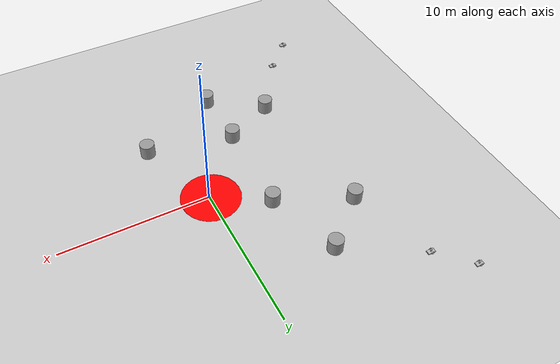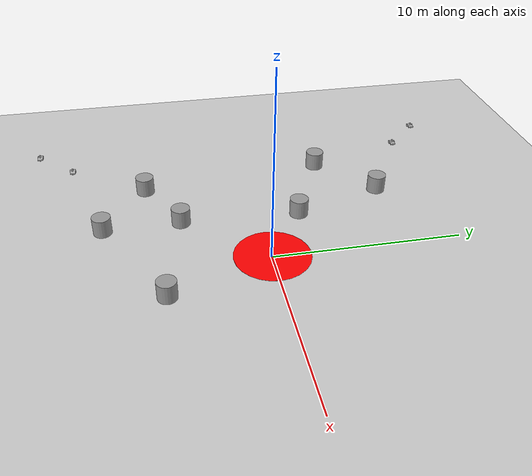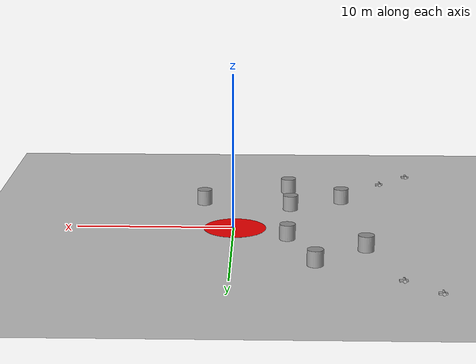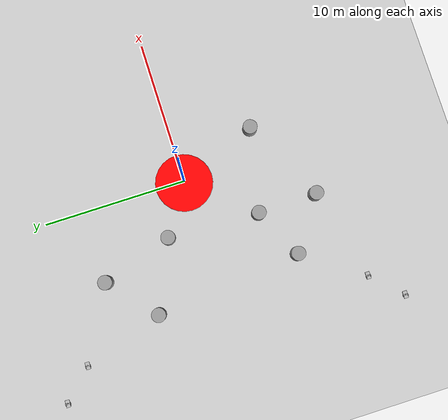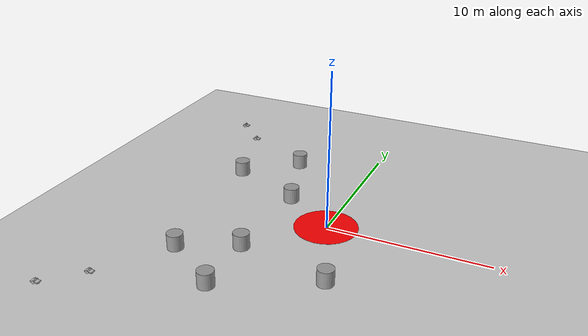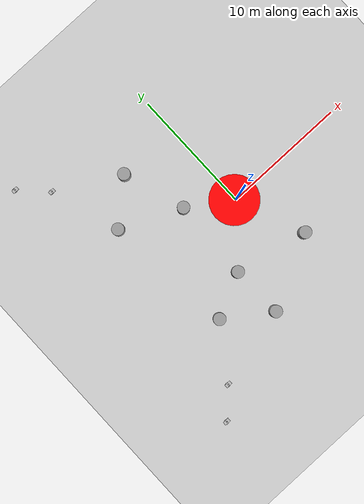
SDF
<sdf version="1.6">
 <world name="default">
  <model name="ground_plane">
   <static>1</static>
   <link name="link">
    <collision name="collision">
     <geometry><plane><normal>0 0 1</normal><size>100 100</size></plane></geometry>
     <surface>
      <contact><collide_bitmask>65535</collide_bitmask></contact>
      <friction><ode><mu>100</mu><mu2>50</mu2></ode></friction>
     </surface>
    </collision>
    <visual name="visual">
     <cast_shadows>0</cast_shadows>
     <geometry><plane><normal>0 0 1</normal><size>100 100</size></plane></geometry>
     <material>
      <script><uri>file://media/materials/scripts/gazebo.material</uri><name>Gazebo/Grey</name></script>
     </material>
    </visual>
   </link>
  </model>
  <model name="unit_cylinder_11_clone">
   <link name="link">
    <inertial>
     <mass>100</mass>
     <inertia><ixx>14.5833</ixx><ixy>0</ixy><ixz>0</ixz><iyy>14.5833</iyy><iyz>0</iyz><izz>12.5</izz></inertia>
    </inertial>
    <visual name="visual">
     <geometry><cylinder><radius>0.5</radius><length>1</length></cylinder></geometry>
     <material>
      <script><name>Gazebo/Grey</name><uri>file://media/materials/scripts/gazebo.material</uri></script>
      <shader type="vertex"><normal_map>__default__</normal_map></shader>
     </material>
    </visual>
    <collision name="collision">
     <geometry><cylinder><radius>0.5</radius><length>1</length></cylinder></geometry>
     <surface>
      <friction>
       <ode><mu>1</mu><mu2>1</mu2><fdir1>0 0 0</fdir1><slip1>0</slip1><slip2>0</slip2></ode>
       <torsional>
        <coefficient>1</coefficient>
        <patch_radius>0</patch_radius>
        <surface_radius>0</surface_radius>
        <use_patch_radius>1</use_patch_radius>
        <ode><slip>0</slip></ode>
       </torsional>
      </friction>
      <bounce><restitution_coefficient>0</restitution_coefficient><threshold>1e+06</threshold></bounce>
      <contact>
       <collide_without_contact>0</collide_without_contact>
       <collide_without_contact_bitmask>1</collide_without_contact_bitmask>
       <collide_bitmask>1</collide_bitmask>
       <ode>
        <soft_cfm>0</soft_cfm>
        <soft_erp>0.2</soft_erp>
        <kp>1e+13</kp>
        <kd>1</kd>
        <max_vel>0.01</max_vel>
        <min_depth>0</min_depth>
       </ode>
       <bullet>
        <split_impulse>1</split_impulse>
        <split_impulse_penetration_threshold>-0.01</split_impulse_penetration_threshold>
        <soft_cfm>0</soft_cfm>
        <soft_erp>0.2</soft_erp>
        <kp>1e+13</kp>
        <kd>1</kd>
       </bullet>
      </contact>
     </surface>
    </collision>
   </link>
   <static>0</static>
   <pose>2.1015 -5.40557 0.5 0 -0 0</pose>
  </model>
  <model name="unit_cylinder_11_clone_1">
   <link name="link">
    <inertial>
     <mass>100</mass>
     <inertia><ixx>14.5833</ixx><ixy>0</ixy><ixz>0</ixz><iyy>14.5833</iyy><iyz>0</iyz><izz>12.5</izz></inertia>
    </inertial>
    <visual name="visual">
     <geometry><cylinder><radius>0.5</radius><length>1</length></cylinder></geometry>
     <material>
      <script><name>Gazebo/Grey</name><uri>file://media/materials/scripts/gazebo.material</uri></script>
      <shader type="vertex"><normal_map>__default__</normal_map></shader>
     </material>
    </visual>
    <collision name="collision">
     <geometry><cylinder><radius>0.5</radius><length>1</length></cylinder></geometry>
     <surface>
      <friction>
       <ode><mu>1</mu><mu2>1</mu2><fdir1>0 0 0</fdir1><slip1>0</slip1><slip2>0</slip2></ode>
       <torsional>
        <coefficient>1</coefficient>
        <patch_radius>0</patch_radius>
        <surface_radius>0</surface_radius>
        <use_patch_radius>1</use_patch_radius>
        <ode><slip>0</slip></ode>
       </torsional>
      </friction>
      <bounce><restitution_coefficient>0</restitution_coefficient><threshold>1e+06</threshold></bounce>
      <contact>
       <collide_without_contact>0</collide_without_contact>
       <collide_without_contact_bitmask>1</collide_without_contact_bitmask>
       <collide_bitmask>1</collide_bitmask>
       <ode>
        <soft_cfm>0</soft_cfm>
        <soft_erp>0.2</soft_erp>
        <kp>1e+13</kp>
        <kd>1</kd>
        <max_vel>0.01</max_vel>
        <min_depth>0</min_depth>
       </ode>
       <bullet>
        <split_impulse>1</split_impulse>
        <split_impulse_penetration_threshold>-0.01</split_impulse_penetration_threshold>
        <soft_cfm>0</soft_cfm>
        <soft_erp>0.2</soft_erp>
        <kp>1e+13</kp>
        <kd>1</kd>
       </bullet>
      </contact>
     </surface>
    </collision>
   </link>
   <static>0</static>
   <pose>-3.59494 -8.3056 0.5 0 -0 0</pose>
  </model>
  <model name="unit_cylinder_11_clone_2">
   <link name="link">
    <inertial>
     <mass>100</mass>
     <inertia><ixx>14.5833</ixx><ixy>0</ixy><ixz>0</ixz><iyy>14.5833</iyy><iyz>0</iyz><izz>12.5</izz></inertia>
    </inertial>
    <visual name="visual">
     <geometry><cylinder><radius>0.5</radius><length>1</length></cylinder></geometry>
     <material>
      <script><name>Gazebo/Grey</name><uri>file://media/materials/scripts/gazebo.material</uri></script>
      <shader type="vertex"><normal_map>__default__</normal_map></shader>
     </material>
    </visual>
    <collision name="collision">
     <geometry><cylinder><radius>0.5</radius><length>1</length></cylinder></geometry>
     <surface>
      <friction>
       <ode><mu>1</mu><mu2>1</mu2><fdir1>0 0 0</fdir1><slip1>0</slip1><slip2>0</slip2></ode>
       <torsional>
        <coefficient>1</coefficient>
        <patch_radius>0</patch_radius>
        <surface_radius>0</surface_radius>
        <use_patch_radius>1</use_patch_radius>
        <ode><slip>0</slip></ode>
       </torsional>
      </friction>
      <bounce><restitution_coefficient>0</restitution_coefficient><threshold>1e+06</threshold></bounce>
      <contact>
       <collide_without_contact>0</collide_without_contact>
       <collide_without_contact_bitmask>1</collide_without_contact_bitmask>
       <collide_bitmask>1</collide_bitmask>
       <ode>
        <soft_cfm>0</soft_cfm>
        <soft_erp>0.2</soft_erp>
        <kp>1e+13</kp>
        <kd>1</kd>
        <max_vel>0.01</max_vel>
        <min_depth>0</min_depth>
       </ode>
       <bullet>
        <split_impulse>1</split_impulse>
        <split_impulse_penetration_threshold>-0.01</split_impulse_penetration_threshold>
        <soft_cfm>0</soft_cfm>
        <soft_erp>0.2</soft_erp>
        <kp>1e+13</kp>
        <kd>1</kd>
       </bullet>
      </contact>
     </surface>
    </collision>
   </link>
   <static>0</static>
   <pose>-7.13423 -5.85046 0.5 0 -0 0</pose>
  </model>
  <model name="unit_cylinder_11_clone_3">
   <link name="link">
    <inertial>
     <mass>100</mass>
     <inertia><ixx>14.5833</ixx><ixy>0</ixy><ixz>0</ixz><iyy>14.5833</iyy><iyz>0</iyz><izz>12.5</izz></inertia>
    </inertial>
    <visual name="visual">
     <geometry><cylinder><radius>0.5</radius><length>1</length></cylinder></geometry>
     <material>
      <script><name>Gazebo/Grey</name><uri>file://media/materials/scripts/gazebo.material</uri></script>
      <shader type="vertex"><normal_map>__default__</normal_map></shader>
     </material>
    </visual>
    <collision name="collision">
     <geometry><cylinder><radius>0.5</radius><length>1</length></cylinder></geometry>
     <surface>
      <friction>
       <ode><mu>1</mu><mu2>1</mu2><fdir1>0 0 0</fdir1><slip1>0</slip1><slip2>0</slip2></ode>
       <torsional>
        <coefficient>1</coefficient>
        <patch_radius>0</patch_radius>
        <surface_radius>0</surface_radius>
        <use_patch_radius>1</use_patch_radius>
        <ode><slip>0</slip></ode>
       </torsional>
      </friction>
      <bounce><restitution_coefficient>0</restitution_coefficient><threshold>1e+06</threshold></bounce>
      <contact>
       <collide_without_contact>0</collide_without_contact>
       <collide_without_contact_bitmask>1</collide_without_contact_bitmask>
       <collide_bitmask>1</collide_bitmask>
       <ode>
        <soft_cfm>0</soft_cfm>
        <soft_erp>0.2</soft_erp>
        <kp>1e+13</kp>
        <kd>1</kd>
        <max_vel>0.01</max_vel>
        <min_depth>0</min_depth>
       </ode>
       <bullet>
        <split_impulse>1</split_impulse>
        <split_impulse_penetration_threshold>-0.01</split_impulse_penetration_threshold>
        <soft_cfm>0</soft_cfm>
        <soft_erp>0.2</soft_erp>
        <kp>1e+13</kp>
        <kd>1</kd>
       </bullet>
      </contact>
     </surface>
    </collision>
   </link>
   <static>0</static>
   <pose>-3.68844 -4.16699 0.5 0 -0 0</pose>
  </model>
  <model name="unit_cylinder_11_clone_4">
   <link name="link">
    <inertial>
     <mass>100</mass>
     <inertia><ixx>14.5833</ixx><ixy>0</ixy><ixz>0</ixz><iyy>14.5833</iyy><iyz>0</iyz><izz>12.5</izz></inertia>
    </inertial>
    <visual name="visual">
     <geometry><cylinder><radius>0.5</radius><length>1</length></cylinder></geometry>
     <material>
      <script><name>Gazebo/Grey</name><uri>file://media/materials/scripts/gazebo.material</uri></script>
      <shader type="vertex"><normal_map>__default__</normal_map></shader>
     </material>
    </visual>
    <collision name="collision">
     <geometry><cylinder><radius>0.5</radius><length>1</length></cylinder></geometry>
     <surface>
      <friction>
       <ode><mu>1</mu><mu2>1</mu2><fdir1>0 0 0</fdir1><slip1>0</slip1><slip2>0</slip2></ode>
       <torsional>
        <coefficient>1</coefficient>
        <patch_radius>0</patch_radius>
        <surface_radius>0</surface_radius>
        <use_patch_radius>1</use_patch_radius>
        <ode><slip>0</slip></ode>
       </torsional>
      </friction>
      <bounce><restitution_coefficient>0</restitution_coefficient><threshold>1e+06</threshold></bounce>
      <contact>
       <collide_without_contact>0</collide_without_contact>
       <collide_without_contact_bitmask>1</collide_without_contact_bitmask>
       <collide_bitmask>1</collide_bitmask>
       <ode>
        <soft_cfm>0</soft_cfm>
        <soft_erp>0.2</soft_erp>
        <kp>1e+13</kp>
        <kd>1</kd>
        <max_vel>0.01</max_vel>
        <min_depth>0</min_depth>
       </ode>
       <bullet>
        <split_impulse>1</split_impulse>
        <split_impulse_penetration_threshold>-0.01</split_impulse_penetration_threshold>
        <soft_cfm>0</soft_cfm>
        <soft_erp>0.2</soft_erp>
        <kp>1e+13</kp>
        <kd>1</kd>
       </bullet>
      </contact>
     </surface>
    </collision>
   </link>
   <static>0</static>
   <pose>-8.20919 4.36885 0.5 0 -0 0</pose>
  </model>
  <model name="unit_cylinder_11_clone_5">
   <link name="link">
    <inertial>
     <mass>100</mass>
     <inertia><ixx>14.5833</ixx><ixy>0</ixy><ixz>0</ixz><iyy>14.5833</iyy><iyz>0</iyz><izz>12.5</izz></inertia>
    </inertial>
    <visual name="visual">
     <geometry><cylinder><radius>0.5</radius><length>1</length></cylinder></geometry>
     <material>
      <script><name>Gazebo/Grey</name><uri>file://media/materials/scripts/gazebo.material</uri></script>
      <shader type="vertex"><normal_map>__default__</normal_map></shader>
     </material>
    </visual>
    <collision name="collision">
     <geometry><cylinder><radius>0.5</radius><length>1</length></cylinder></geometry>
     <surface>
      <friction>
       <ode><mu>1</mu><mu2>1</mu2><fdir1>0 0 0</fdir1><slip1>0</slip1><slip2>0</slip2></ode>
       <torsional>
        <coefficient>1</coefficient>
        <patch_radius>0</patch_radius>
        <surface_radius>0</surface_radius>
        <use_patch_radius>1</use_patch_radius>
        <ode><slip>0</slip></ode>
       </torsional>
      </friction>
      <bounce><restitution_coefficient>0</restitution_coefficient><threshold>1e+06</threshold></bounce>
      <contact>
       <collide_without_contact>0</collide_without_contact>
       <collide_without_contact_bitmask>1</collide_without_contact_bitmask>
       <collide_bitmask>1</collide_bitmask>
       <ode>
        <soft_cfm>0</soft_cfm>
        <soft_erp>0.2</soft_erp>
        <kp>1e+13</kp>
        <kd>1</kd>
        <max_vel>0.01</max_vel>
        <min_depth>0</min_depth>
       </ode>
       <bullet>
        <split_impulse>1</split_impulse>
        <split_impulse_penetration_threshold>-0.01</split_impulse_penetration_threshold>
        <soft_cfm>0</soft_cfm>
        <soft_erp>0.2</soft_erp>
        <kp>1e+13</kp>
        <kd>1</kd>
       </bullet>
      </contact>
     </surface>
    </collision>
   </link>
   <static>0</static>
   <pose>-5.04068 7.16468 0.5 0 -0 0</pose>
  </model>
  <model name="unit_cylinder_11_clone_6">
   <link name="link">
    <inertial>
     <mass>100</mass>
     <inertia><ixx>14.5833</ixx><ixy>0</ixy><ixz>0</ixz><iyy>14.5833</iyy><iyz>0</iyz><izz>12.5</izz></inertia>
    </inertial>
    <visual name="visual">
     <geometry><cylinder><radius>0.5</radius><length>1</length></cylinder></geometry>
     <material>
      <script><name>Gazebo/Grey</name><uri>file://media/materials/scripts/gazebo.material</uri></script>
      <shader type="vertex"><normal_map>__default__</normal_map></shader>
     </material>
    </visual>
    <collision name="collision">
     <geometry><cylinder><radius>0.5</radius><length>1</length></cylinder></geometry>
     <surface>
      <friction>
       <ode><mu>1</mu><mu2>1</mu2><fdir1>0 0 0</fdir1><slip1>0</slip1><slip2>0</slip2></ode>
       <torsional>
        <coefficient>1</coefficient>
        <patch_radius>0</patch_radius>
        <surface_radius>0</surface_radius>
        <use_patch_radius>1</use_patch_radius>
        <ode><slip>0</slip></ode>
       </torsional>
      </friction>
      <bounce><restitution_coefficient>0</restitution_coefficient><threshold>1e+06</threshold></bounce>
      <contact>
       <collide_without_contact>0</collide_without_contact>
       <collide_without_contact_bitmask>1</collide_without_contact_bitmask>
       <collide_bitmask>1</collide_bitmask>
       <ode>
        <soft_cfm>0</soft_cfm>
        <soft_erp>0.2</soft_erp>
        <kp>1e+13</kp>
        <kd>1</kd>
        <max_vel>0.01</max_vel>
        <min_depth>0</min_depth>
       </ode>
       <bullet>
        <split_impulse>1</split_impulse>
        <split_impulse_penetration_threshold>-0.01</split_impulse_penetration_threshold>
        <soft_cfm>0</soft_cfm>
        <soft_erp>0.2</soft_erp>
        <kp>1e+13</kp>
        <kd>1</kd>
       </bullet>
      </contact>
     </surface>
    </collision>
   </link>
   <static>0</static>
   <pose>-3.43309 2.22785 0.5 0 -0 0</pose>
  </model>
  <model name="robot_6">
   <link name="robot/link_chassis">
    <inertial>
     <pose>0 0 0.021667 0 -0 0</pose>
     <mass>6</mass>
     <inertia>
      <ixx>0.0931667</ixx>
      <ixy>0</ixy>
      <ixz>0</ixz>
      <iyy>0.2265</iyy>
      <iyz>0</iyz>
      <izz>0.212417</izz>
     </inertia>
    </inertial>
    <collision name="robot/link_chassis_fixed_joint_lump__robot/collision_chassis_collision">
     <geometry><box><size>0.5 0.3 0.07</size></box></geometry>
    </collision>
    <collision name="robot/link_chassis_fixed_joint_lump__robot/caster_front_collision_collision_1">
     <pose>0.35 0 -0.05 0 -0 0</pose>
     <geometry><sphere><radius>0.05</radius></sphere></geometry>
    </collision>
    <collision name="robot/link_chassis_fixed_joint_lump__robot/sensor_laser_collision_2">
     <pose>0 0 0.13 0 -0 0</pose>
     <geometry><cylinder><length>0.15</length><radius>0.05</radius></cylinder></geometry>
    </collision>
    <visual name="robot/link_chassis_visual"><geometry><box><size>0.5 0.3 0.07</size></box></geometry></visual>
    <visual name="robot/link_chassis_fixed_joint_lump__robot/caster_front_visual_visual_1">
     <pose>0.2 0 -0.05 0 -0 0</pose>
     <geometry><sphere><radius>0.05</radius></sphere></geometry>
    </visual>
    <visual name="robot/link_chassis_fixed_joint_lump__robot/sensor_laser_visual_2">
     <pose>0 0 0.13 0 -0 0</pose>
     <geometry><cylinder><length>0.15</length><radius>0.05</radius></cylinder></geometry>
     <material><script><uri>__default__</uri><name>__default__</name></script></material>
    </visual>
    <sensor name="head_hokuyo_sensor" type="ray">
     <visualize>0</visualize>
     <update_rate>20</update_rate>
     <ray>
      <scan>
       <horizontal>
        <samples>720</samples>
        <resolution>1</resolution>
        <min_angle>-1.5707</min_angle>
        <max_angle>1.5707</max_angle>
       </horizontal>
       <vertical><samples>1</samples><min_angle>0</min_angle><max_angle>0</max_angle></vertical>
      </scan>
      <range><min>0.2</min><max>2</max><resolution>0.01</resolution></range>
      <noise><type>gaussian</type><mean>0</mean><stddev>0.01</stddev></noise>
     </ray>
     <plugin name="gazebo_ros_head_hokuyo_controller" filename="libgazebo_ros_laser.so">
      <topicName>laser_scan</topicName>
      <frameName>sensor_laser</frameName>
      <robotNamespace>/robot_6/</robotNamespace>
     </plugin>
     <pose>0 0 0.13 0 -0 0</pose>
    </sensor>
   </link>
   <link name="robot/link_left_wheel">
    <pose>-0.05 -0.15 0 0 -0 0</pose>
    <inertial>
     <pose>0 0 0 -0 1.5707 1.5707</pose>
     <mass>0.2</mass>
     <inertia>
      <ixx>0.000526667</ixx>
      <ixy>0</ixy>
      <ixz>0</ixz>
      <iyy>0.000526667</iyy>
      <iyz>0</iyz>
      <izz>0.001</izz>
     </inertia>
    </inertial>
    <collision name="robot/link_left_wheel_collision_collision">
     <pose>0 0 0 3.14159 1.57079 -1.57089</pose>
     <geometry><cylinder><length>0.04</length><radius>0.1</radius></cylinder></geometry>
    </collision>
    <visual name="robot/link_left_wheel_visual_visual">
     <pose>0 0 0 3.14159 1.57079 -1.57089</pose>
     <geometry><cylinder><length>0.04</length><radius>0.1</radius></cylinder></geometry>
    </visual>
   </link>
   <joint name="robot/joint_left_wheel" type="revolute">
    <child>robot/link_left_wheel</child>
    <parent>robot/link_chassis</parent>
    <axis>
     <xyz>0 1 0</xyz>
     <limit><lower>-1e+16</lower><upper>1e+16</upper></limit>
     <dynamics><spring_reference>0</spring_reference><spring_stiffness>0</spring_stiffness></dynamics>
     <use_parent_model_frame>1</use_parent_model_frame>
    </axis>
   </joint>
   <link name="robot/link_right_wheel">
    <pose>-0.05 0.15 0 0 -0 0</pose>
    <inertial>
     <pose>0 0 0 -0 1.5707 1.5707</pose>
     <mass>0.2</mass>
     <inertia>
      <ixx>0.000526667</ixx>
      <ixy>0</ixy>
      <ixz>0</ixz>
      <iyy>0.000526667</iyy>
      <iyz>0</iyz>
      <izz>0.001</izz>
     </inertia>
    </inertial>
    <collision name="robot/link_right_wheel_collision_collision">
     <pose>0 0 0 3.14159 1.57079 -1.57089</pose>
     <geometry><cylinder><length>0.04</length><radius>0.1</radius></cylinder></geometry>
    </collision>
    <visual name="robot/link_right_wheel_visual_visual">
     <pose>0 0 0 3.14159 1.57079 -1.57089</pose>
     <geometry><cylinder><length>0.04</length><radius>0.1</radius></cylinder></geometry>
    </visual>
   </link>
   <joint name="robot/joint_right_wheel" type="revolute">
    <child>robot/link_right_wheel</child>
    <parent>robot/link_chassis</parent>
    <axis>
     <xyz>0 1 0</xyz>
     <limit><lower>-1e+16</lower><upper>1e+16</upper></limit>
     <dynamics><spring_reference>0</spring_reference><spring_stiffness>0</spring_stiffness></dynamics>
     <use_parent_model_frame>1</use_parent_model_frame>
    </axis>
   </joint>
   <plugin name="gazebo_ros_control" filename="libgazebo_ros_control.so">
    <robotSimType>gazebo_ros_control/DefaultRobotHWSim</robotSimType>
    <legacyModeNS>1</legacyModeNS>
    <robotNamespace>/robot_6/</robotNamespace>
   </plugin>
   <static>0</static>
   <plugin name="differential_drive_controller" filename="libgazebo_ros_diff_drive.so">
    <legacyMode>0</legacyMode>
    <alwaysOn>1</alwaysOn>
    <updateRate>20</updateRate>
    <leftJoint>robot/joint_left_wheel</leftJoint>
    <rightJoint>robot/joint_right_wheel</rightJoint>
    <wheelSeparation>0.2</wheelSeparation>
    <wheelDiameter>0.2</wheelDiameter>
    <torque>0.1</torque>
    <commandTopic>cmd_vel</commandTopic>
    <odometryTopic>odom</odometryTopic>
    <odometryFrame>odom</odometryFrame>
    <robotBaseFrame>link_chassis</robotBaseFrame>
    <robotNamespace>/robot_6/</robotNamespace>
   </plugin>
   <pose>-12.0055 12.0023 0.099999 0 6e-06 -0.002931</pose>
  </model>
  <model name="robot_1">
   <link name="robot/link_chassis">
    <inertial>
     <pose>0 0 0.021667 0 -0 0</pose>
     <mass>6</mass>
     <inertia>
      <ixx>0.0931667</ixx>
      <ixy>0</ixy>
      <ixz>0</ixz>
      <iyy>0.2265</iyy>
      <iyz>0</iyz>
      <izz>0.212417</izz>
     </inertia>
    </inertial>
    <collision name="robot/link_chassis_fixed_joint_lump__robot/collision_chassis_collision">
     <geometry><box><size>0.5 0.3 0.07</size></box></geometry>
    </collision>
    <collision name="robot/link_chassis_fixed_joint_lump__robot/caster_front_collision_collision_1">
     <pose>0.35 0 -0.05 0 -0 0</pose>
     <geometry><sphere><radius>0.05</radius></sphere></geometry>
    </collision>
    <collision name="robot/link_chassis_fixed_joint_lump__robot/sensor_laser_collision_2">
     <pose>0 0 0.13 0 -0 0</pose>
     <geometry><cylinder><length>0.15</length><radius>0.05</radius></cylinder></geometry>
    </collision>
    <visual name="robot/link_chassis_visual"><geometry><box><size>0.5 0.3 0.07</size></box></geometry></visual>
    <visual name="robot/link_chassis_fixed_joint_lump__robot/caster_front_visual_visual_1">
     <pose>0.2 0 -0.05 0 -0 0</pose>
     <geometry><sphere><radius>0.05</radius></sphere></geometry>
    </visual>
    <visual name="robot/link_chassis_fixed_joint_lump__robot/sensor_laser_visual_2">
     <pose>0 0 0.13 0 -0 0</pose>
     <geometry><cylinder><length>0.15</length><radius>0.05</radius></cylinder></geometry>
     <material><script><uri>__default__</uri><name>__default__</name></script></material>
    </visual>
    <sensor name="head_hokuyo_sensor" type="ray">
     <visualize>0</visualize>
     <update_rate>20</update_rate>
     <ray>
      <scan>
       <horizontal>
        <samples>720</samples>
        <resolution>1</resolution>
        <min_angle>-1.5707</min_angle>
        <max_angle>1.5707</max_angle>
       </horizontal>
       <vertical><samples>1</samples><min_angle>0</min_angle><max_angle>0</max_angle></vertical>
      </scan>
      <range><min>0.2</min><max>2</max><resolution>0.01</resolution></range>
      <noise><type>gaussian</type><mean>0</mean><stddev>0.01</stddev></noise>
     </ray>
     <plugin name="gazebo_ros_head_hokuyo_controller" filename="libgazebo_ros_laser.so">
      <topicName>laser_scan</topicName>
      <frameName>sensor_laser</frameName>
      <robotNamespace>/robot_1/</robotNamespace>
     </plugin>
     <pose>0 0 0.13 0 -0 0</pose>
    </sensor>
   </link>
   <link name="robot/link_left_wheel">
    <pose>-0.05 -0.15 0 0 -0 0</pose>
    <inertial>
     <pose>0 0 0 -0 1.5707 1.5707</pose>
     <mass>0.2</mass>
     <inertia>
      <ixx>0.000526667</ixx>
      <ixy>0</ixy>
      <ixz>0</ixz>
      <iyy>0.000526667</iyy>
      <iyz>0</iyz>
      <izz>0.001</izz>
     </inertia>
    </inertial>
    <collision name="robot/link_left_wheel_collision_collision">
     <pose>0 0 0 3.14159 1.57079 -1.57089</pose>
     <geometry><cylinder><length>0.04</length><radius>0.1</radius></cylinder></geometry>
    </collision>
    <visual name="robot/link_left_wheel_visual_visual">
     <pose>0 0 0 3.14159 1.57079 -1.57089</pose>
     <geometry><cylinder><length>0.04</length><radius>0.1</radius></cylinder></geometry>
    </visual>
   </link>
   <joint name="robot/joint_left_wheel" type="revolute">
    <child>robot/link_left_wheel</child>
    <parent>robot/link_chassis</parent>
    <axis>
     <xyz>0 1 0</xyz>
     <limit><lower>-1e+16</lower><upper>1e+16</upper></limit>
     <dynamics><spring_reference>0</spring_reference><spring_stiffness>0</spring_stiffness></dynamics>
     <use_parent_model_frame>1</use_parent_model_frame>
    </axis>
   </joint>
   <link name="robot/link_right_wheel">
    <pose>-0.05 0.15 0 0 -0 0</pose>
    <inertial>
     <pose>0 0 0 -0 1.5707 1.5707</pose>
     <mass>0.2</mass>
     <inertia>
      <ixx>0.000526667</ixx>
      <ixy>0</ixy>
      <ixz>0</ixz>
      <iyy>0.000526667</iyy>
      <iyz>0</iyz>
      <izz>0.001</izz>
     </inertia>
    </inertial>
    <collision name="robot/link_right_wheel_collision_collision">
     <pose>0 0 0 3.14159 1.57079 -1.57089</pose>
     <geometry><cylinder><length>0.04</length><radius>0.1</radius></cylinder></geometry>
    </collision>
    <visual name="robot/link_right_wheel_visual_visual">
     <pose>0 0 0 3.14159 1.57079 -1.57089</pose>
     <geometry><cylinder><length>0.04</length><radius>0.1</radius></cylinder></geometry>
    </visual>
   </link>
   <joint name="robot/joint_right_wheel" type="revolute">
    <child>robot/link_right_wheel</child>
    <parent>robot/link_chassis</parent>
    <axis>
     <xyz>0 1 0</xyz>
     <limit><lower>-1e+16</lower><upper>1e+16</upper></limit>
     <dynamics><spring_reference>0</spring_reference><spring_stiffness>0</spring_stiffness></dynamics>
     <use_parent_model_frame>1</use_parent_model_frame>
    </axis>
   </joint>
   <plugin name="gazebo_ros_control" filename="libgazebo_ros_control.so">
    <robotSimType>gazebo_ros_control/DefaultRobotHWSim</robotSimType>
    <legacyModeNS>1</legacyModeNS>
    <robotNamespace>/robot_1/</robotNamespace>
   </plugin>
   <static>0</static>
   <plugin name="differential_drive_controller" filename="libgazebo_ros_diff_drive.so">
    <legacyMode>0</legacyMode>
    <alwaysOn>1</alwaysOn>
    <updateRate>20</updateRate>
    <leftJoint>robot/joint_left_wheel</leftJoint>
    <rightJoint>robot/joint_right_wheel</rightJoint>
    <wheelSeparation>0.2</wheelSeparation>
    <wheelDiameter>0.2</wheelDiameter>
    <torque>0.1</torque>
    <commandTopic>cmd_vel</commandTopic>
    <odometryTopic>odom</odometryTopic>
    <odometryFrame>odom</odometryFrame>
    <robotBaseFrame>link_chassis</robotBaseFrame>
    <robotNamespace>/robot_1/</robotNamespace>
   </plugin>
   <pose>-10.0054 -9.99772 0.1 0 -0 -0.002931</pose>
  </model>
  <model name="robot_5">
   <link name="robot/link_chassis">
    <inertial>
     <pose>0 0 0.021667 0 -0 0</pose>
     <mass>6</mass>
     <inertia>
      <ixx>0.0931667</ixx>
      <ixy>0</ixy>
      <ixz>0</ixz>
      <iyy>0.2265</iyy>
      <iyz>0</iyz>
      <izz>0.212417</izz>
     </inertia>
    </inertial>
    <collision name="robot/link_chassis_fixed_joint_lump__robot/collision_chassis_collision">
     <geometry><box><size>0.5 0.3 0.07</size></box></geometry>
    </collision>
    <collision name="robot/link_chassis_fixed_joint_lump__robot/caster_front_collision_collision_1">
     <pose>0.35 0 -0.05 0 -0 0</pose>
     <geometry><sphere><radius>0.05</radius></sphere></geometry>
    </collision>
    <collision name="robot/link_chassis_fixed_joint_lump__robot/sensor_laser_collision_2">
     <pose>0 0 0.13 0 -0 0</pose>
     <geometry><cylinder><length>0.15</length><radius>0.05</radius></cylinder></geometry>
    </collision>
    <visual name="robot/link_chassis_visual"><geometry><box><size>0.5 0.3 0.07</size></box></geometry></visual>
    <visual name="robot/link_chassis_fixed_joint_lump__robot/caster_front_visual_visual_1">
     <pose>0.2 0 -0.05 0 -0 0</pose>
     <geometry><sphere><radius>0.05</radius></sphere></geometry>
    </visual>
    <visual name="robot/link_chassis_fixed_joint_lump__robot/sensor_laser_visual_2">
     <pose>0 0 0.13 0 -0 0</pose>
     <geometry><cylinder><length>0.15</length><radius>0.05</radius></cylinder></geometry>
     <material><script><uri>__default__</uri><name>__default__</name></script></material>
    </visual>
    <sensor name="head_hokuyo_sensor" type="ray">
     <visualize>0</visualize>
     <update_rate>20</update_rate>
     <ray>
      <scan>
       <horizontal>
        <samples>720</samples>
        <resolution>1</resolution>
        <min_angle>-1.5707</min_angle>
        <max_angle>1.5707</max_angle>
       </horizontal>
       <vertical><samples>1</samples><min_angle>0</min_angle><max_angle>0</max_angle></vertical>
      </scan>
      <range><min>0.2</min><max>2</max><resolution>0.01</resolution></range>
      <noise><type>gaussian</type><mean>0</mean><stddev>0.01</stddev></noise>
     </ray>
     <plugin name="gazebo_ros_head_hokuyo_controller" filename="libgazebo_ros_laser.so">
      <topicName>laser_scan</topicName>
      <frameName>sensor_laser</frameName>
      <robotNamespace>/robot_5/</robotNamespace>
     </plugin>
     <pose>0 0 0.13 0 -0 0</pose>
    </sensor>
   </link>
   <link name="robot/link_left_wheel">
    <pose>-0.05 -0.15 0 0 -0 0</pose>
    <inertial>
     <pose>0 0 0 -0 1.5707 1.5707</pose>
     <mass>0.2</mass>
     <inertia>
      <ixx>0.000526667</ixx>
      <ixy>0</ixy>
      <ixz>0</ixz>
      <iyy>0.000526667</iyy>
      <iyz>0</iyz>
      <izz>0.001</izz>
     </inertia>
    </inertial>
    <collision name="robot/link_left_wheel_collision_collision">
     <pose>0 0 0 3.14159 1.57079 -1.57089</pose>
     <geometry><cylinder><length>0.04</length><radius>0.1</radius></cylinder></geometry>
    </collision>
    <visual name="robot/link_left_wheel_visual_visual">
     <pose>0 0 0 3.14159 1.57079 -1.57089</pose>
     <geometry><cylinder><length>0.04</length><radius>0.1</radius></cylinder></geometry>
    </visual>
   </link>
   <joint name="robot/joint_left_wheel" type="revolute">
    <child>robot/link_left_wheel</child>
    <parent>robot/link_chassis</parent>
    <axis>
     <xyz>0 1 0</xyz>
     <limit><lower>-1e+16</lower><upper>1e+16</upper></limit>
     <dynamics><spring_reference>0</spring_reference><spring_stiffness>0</spring_stiffness></dynamics>
     <use_parent_model_frame>1</use_parent_model_frame>
    </axis>
   </joint>
   <link name="robot/link_right_wheel">
    <pose>-0.05 0.15 0 0 -0 0</pose>
    <inertial>
     <pose>0 0 0 -0 1.5707 1.5707</pose>
     <mass>0.2</mass>
     <inertia>
      <ixx>0.000526667</ixx>
      <ixy>0</ixy>
      <ixz>0</ixz>
      <iyy>0.000526667</iyy>
      <iyz>0</iyz>
      <izz>0.001</izz>
     </inertia>
    </inertial>
    <collision name="robot/link_right_wheel_collision_collision">
     <pose>0 0 0 3.14159 1.57079 -1.57089</pose>
     <geometry><cylinder><length>0.04</length><radius>0.1</radius></cylinder></geometry>
    </collision>
    <visual name="robot/link_right_wheel_visual_visual">
     <pose>0 0 0 3.14159 1.57079 -1.57089</pose>
     <geometry><cylinder><length>0.04</length><radius>0.1</radius></cylinder></geometry>
    </visual>
   </link>
   <joint name="robot/joint_right_wheel" type="revolute">
    <child>robot/link_right_wheel</child>
    <parent>robot/link_chassis</parent>
    <axis>
     <xyz>0 1 0</xyz>
     <limit><lower>-1e+16</lower><upper>1e+16</upper></limit>
     <dynamics><spring_reference>0</spring_reference><spring_stiffness>0</spring_stiffness></dynamics>
     <use_parent_model_frame>1</use_parent_model_frame>
    </axis>
   </joint>
   <plugin name="gazebo_ros_control" filename="libgazebo_ros_control.so">
    <robotSimType>gazebo_ros_control/DefaultRobotHWSim</robotSimType>
    <legacyModeNS>1</legacyModeNS>
    <robotNamespace>/robot_5/</robotNamespace>
   </plugin>
   <static>0</static>
   <plugin name="differential_drive_controller" filename="libgazebo_ros_diff_drive.so">
    <legacyMode>0</legacyMode>
    <alwaysOn>1</alwaysOn>
    <updateRate>20</updateRate>
    <leftJoint>robot/joint_left_wheel</leftJoint>
    <rightJoint>robot/joint_right_wheel</rightJoint>
    <wheelSeparation>0.2</wheelSeparation>
    <wheelDiameter>0.2</wheelDiameter>
    <torque>0.1</torque>
    <commandTopic>cmd_vel</commandTopic>
    <odometryTopic>odom</odometryTopic>
    <odometryFrame>odom</odometryFrame>
    <robotBaseFrame>link_chassis</robotBaseFrame>
    <robotNamespace>/robot_5/</robotNamespace>
   </plugin>
   <pose>-10.0054 10.0023 0.1 0 3e-06 -0.002932</pose>
  </model>
  <model name="robot_2">
   <link name="robot/link_chassis">
    <inertial>
     <pose>0 0 0.021667 0 -0 0</pose>
     <mass>6</mass>
     <inertia>
      <ixx>0.0931667</ixx>
      <ixy>0</ixy>
      <ixz>0</ixz>
      <iyy>0.2265</iyy>
      <iyz>0</iyz>
      <izz>0.212417</izz>
     </inertia>
    </inertial>
    <collision name="robot/link_chassis_fixed_joint_lump__robot/collision_chassis_collision">
     <geometry><box><size>0.5 0.3 0.07</size></box></geometry>
    </collision>
    <collision name="robot/link_chassis_fixed_joint_lump__robot/caster_front_collision_collision_1">
     <pose>0.35 0 -0.05 0 -0 0</pose>
     <geometry><sphere><radius>0.05</radius></sphere></geometry>
    </collision>
    <collision name="robot/link_chassis_fixed_joint_lump__robot/sensor_laser_collision_2">
     <pose>0 0 0.13 0 -0 0</pose>
     <geometry><cylinder><length>0.15</length><radius>0.05</radius></cylinder></geometry>
    </collision>
    <visual name="robot/link_chassis_visual"><geometry><box><size>0.5 0.3 0.07</size></box></geometry></visual>
    <visual name="robot/link_chassis_fixed_joint_lump__robot/caster_front_visual_visual_1">
     <pose>0.2 0 -0.05 0 -0 0</pose>
     <geometry><sphere><radius>0.05</radius></sphere></geometry>
    </visual>
    <visual name="robot/link_chassis_fixed_joint_lump__robot/sensor_laser_visual_2">
     <pose>0 0 0.13 0 -0 0</pose>
     <geometry><cylinder><length>0.15</length><radius>0.05</radius></cylinder></geometry>
     <material><script><uri>__default__</uri><name>__default__</name></script></material>
    </visual>
    <sensor name="head_hokuyo_sensor" type="ray">
     <visualize>0</visualize>
     <update_rate>20</update_rate>
     <ray>
      <scan>
       <horizontal>
        <samples>720</samples>
        <resolution>1</resolution>
        <min_angle>-1.5707</min_angle>
        <max_angle>1.5707</max_angle>
       </horizontal>
       <vertical><samples>1</samples><min_angle>0</min_angle><max_angle>0</max_angle></vertical>
      </scan>
      <range><min>0.2</min><max>2</max><resolution>0.01</resolution></range>
      <noise><type>gaussian</type><mean>0</mean><stddev>0.01</stddev></noise>
     </ray>
     <plugin name="gazebo_ros_head_hokuyo_controller" filename="libgazebo_ros_laser.so">
      <topicName>laser_scan</topicName>
      <frameName>sensor_laser</frameName>
      <robotNamespace>/robot_2/</robotNamespace>
     </plugin>
     <pose>0 0 0.13 0 -0 0</pose>
    </sensor>
   </link>
   <link name="robot/link_left_wheel">
    <pose>-0.05 -0.15 0 0 -0 0</pose>
    <inertial>
     <pose>0 0 0 -0 1.5707 1.5707</pose>
     <mass>0.2</mass>
     <inertia>
      <ixx>0.000526667</ixx>
      <ixy>0</ixy>
      <ixz>0</ixz>
      <iyy>0.000526667</iyy>
      <iyz>0</iyz>
      <izz>0.001</izz>
     </inertia>
    </inertial>
    <collision name="robot/link_left_wheel_collision_collision">
     <pose>0 0 0 3.14159 1.57079 -1.57089</pose>
     <geometry><cylinder><length>0.04</length><radius>0.1</radius></cylinder></geometry>
    </collision>
    <visual name="robot/link_left_wheel_visual_visual">
     <pose>0 0 0 3.14159 1.57079 -1.57089</pose>
     <geometry><cylinder><length>0.04</length><radius>0.1</radius></cylinder></geometry>
    </visual>
   </link>
   <joint name="robot/joint_left_wheel" type="revolute">
    <child>robot/link_left_wheel</child>
    <parent>robot/link_chassis</parent>
    <axis>
     <xyz>0 1 0</xyz>
     <limit><lower>-1e+16</lower><upper>1e+16</upper></limit>
     <dynamics><spring_reference>0</spring_reference><spring_stiffness>0</spring_stiffness></dynamics>
     <use_parent_model_frame>1</use_parent_model_frame>
    </axis>
   </joint>
   <link name="robot/link_right_wheel">
    <pose>-0.05 0.15 0 0 -0 0</pose>
    <inertial>
     <pose>0 0 0 -0 1.5707 1.5707</pose>
     <mass>0.2</mass>
     <inertia>
      <ixx>0.000526667</ixx>
      <ixy>0</ixy>
      <ixz>0</ixz>
      <iyy>0.000526667</iyy>
      <iyz>0</iyz>
      <izz>0.001</izz>
     </inertia>
    </inertial>
    <collision name="robot/link_right_wheel_collision_collision">
     <pose>0 0 0 3.14159 1.57079 -1.57089</pose>
     <geometry><cylinder><length>0.04</length><radius>0.1</radius></cylinder></geometry>
    </collision>
    <visual name="robot/link_right_wheel_visual_visual">
     <pose>0 0 0 3.14159 1.57079 -1.57089</pose>
     <geometry><cylinder><length>0.04</length><radius>0.1</radius></cylinder></geometry>
    </visual>
   </link>
   <joint name="robot/joint_right_wheel" type="revolute">
    <child>robot/link_right_wheel</child>
    <parent>robot/link_chassis</parent>
    <axis>
     <xyz>0 1 0</xyz>
     <limit><lower>-1e+16</lower><upper>1e+16</upper></limit>
     <dynamics><spring_reference>0</spring_reference><spring_stiffness>0</spring_stiffness></dynamics>
     <use_parent_model_frame>1</use_parent_model_frame>
    </axis>
   </joint>
   <plugin name="gazebo_ros_control" filename="libgazebo_ros_control.so">
    <robotSimType>gazebo_ros_control/DefaultRobotHWSim</robotSimType>
    <legacyModeNS>1</legacyModeNS>
    <robotNamespace>/robot_2/</robotNamespace>
   </plugin>
   <static>0</static>
   <plugin name="differential_drive_controller" filename="libgazebo_ros_diff_drive.so">
    <legacyMode>0</legacyMode>
    <alwaysOn>1</alwaysOn>
    <updateRate>20</updateRate>
    <leftJoint>robot/joint_left_wheel</leftJoint>
    <rightJoint>robot/joint_right_wheel</rightJoint>
    <wheelSeparation>0.2</wheelSeparation>
    <wheelDiameter>0.2</wheelDiameter>
    <torque>0.1</torque>
    <commandTopic>cmd_vel</commandTopic>
    <odometryTopic>odom</odometryTopic>
    <odometryFrame>odom</odometryFrame>
    <robotBaseFrame>link_chassis</robotBaseFrame>
    <robotNamespace>/robot_2/</robotNamespace>
   </plugin>
   <pose>-12.0052 -11.9977 0.1 0 -1e-06 -0.002941</pose>
  </model>
  <model name="target_1">
   <link name="link_0">
    <inertial>
     <mass>1</mass>
     <inertia><ixx>0.145833</ixx><ixy>0</ixy><ixz>0</ixz><iyy>0.145833</iyy><iyz>0</iyz><izz>0.125</izz></inertia>
    </inertial>
    <pose>-0.058186 0.0294 8e-06 3e-06 4e-06 -0</pose>
    <visual name="visual">
     <pose>0 0 -0.49 0 -0 0</pose>
     <geometry><cylinder><radius>2</radius><length>0.005</length></cylinder></geometry>
     <material>
      <lighting>1</lighting>
      <script><uri>file://media/materials/scripts/gazebo.material</uri><name>Gazebo/Grey</name></script>
      <shader type="vertex"><normal_map>__default__</normal_map></shader>
      <ambient>1 0 0 0</ambient>
      <diffuse>0.7 0.7 0.7 1</diffuse>
      <specular>0.01 0.01 0.01 1</specular>
      <emissive>0 0 0 1</emissive>
     </material>
    </visual>
    <collision name="collision">
     <pose>0 0 -0.49 0 -0 0</pose>
     <geometry><cylinder><radius>2</radius><length>0.005</length></cylinder></geometry>
     <surface>
      <friction>
       <ode><mu>1</mu><mu2>1</mu2><fdir1>0 0 0</fdir1><slip1>0</slip1><slip2>0</slip2></ode>
       <torsional>
        <coefficient>1</coefficient>
        <patch_radius>0</patch_radius>
        <surface_radius>0</surface_radius>
        <use_patch_radius>1</use_patch_radius>
        <ode><slip>0</slip></ode>
       </torsional>
      </friction>
      <bounce><restitution_coefficient>0</restitution_coefficient><threshold>1e+06</threshold></bounce>
      <contact>
       <collide_without_contact>0</collide_without_contact>
       <collide_without_contact_bitmask>1</collide_without_contact_bitmask>
       <collide_bitmask>1</collide_bitmask>
       <ode>
        <soft_cfm>0</soft_cfm>
        <soft_erp>0.2</soft_erp>
        <kp>1e+13</kp>
        <kd>1</kd>
        <max_vel>0.01</max_vel>
        <min_depth>0</min_depth>
       </ode>
       <bullet>
        <split_impulse>1</split_impulse>
        <split_impulse_penetration_threshold>-0.01</split_impulse_penetration_threshold>
        <soft_cfm>0</soft_cfm>
        <soft_erp>0.2</soft_erp>
        <kp>1e+13</kp>
        <kd>1</kd>
       </bullet>
      </contact>
     </surface>
    </collision>
   </link>
   <static>0</static>
   <pose>-0.041017 0.031627 0.499993 -3e-06 -4e-06 -0</pose>
  </model>
 </world>
</sdf>
